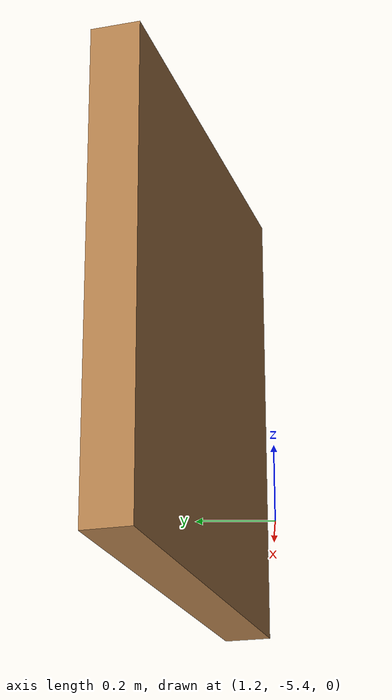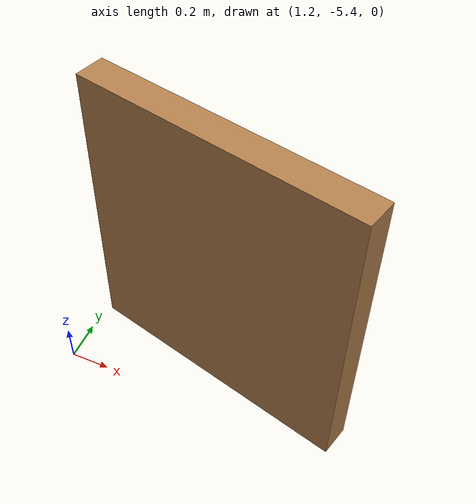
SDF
<?xml version='1.0'?>
<sdf version='1.6'>
  <model name='diagonal_wall'>
    <pose frame=''>1.92587 -5.15118 0 0 -0 0</pose>
    <link name='Wall_2'>
      <collision name='Wall_2_Collision'>
        <geometry>
          <box>
            <size>1.4 0.15 1.5</size>
          </box>
        </geometry>
        <pose frame=''>0 0 0.75 0 -0 0</pose>
      </collision>
      <visual name='Wall_2_Visual'>
        <pose frame=''>0 0 0.75 0 -0 0</pose>
        <geometry>
          <box>
            <size>1.4 0.15 1.5</size>
          </box>
        </geometry>
        <material>
          <script>
            <uri>file://media/materials/scripts/gazebo.material</uri>
            <name>Gazebo/Wood</name>
          </script>
          <ambient>1 1 1 1</ambient>
        </material>
        <meta>
          <layer>0</layer>
        </meta>
      </visual>
      <pose frame=''>0 0 0 0 -0 2.87953</pose>
    </link>
    <static>1</static>
  </model>
</sdf>
